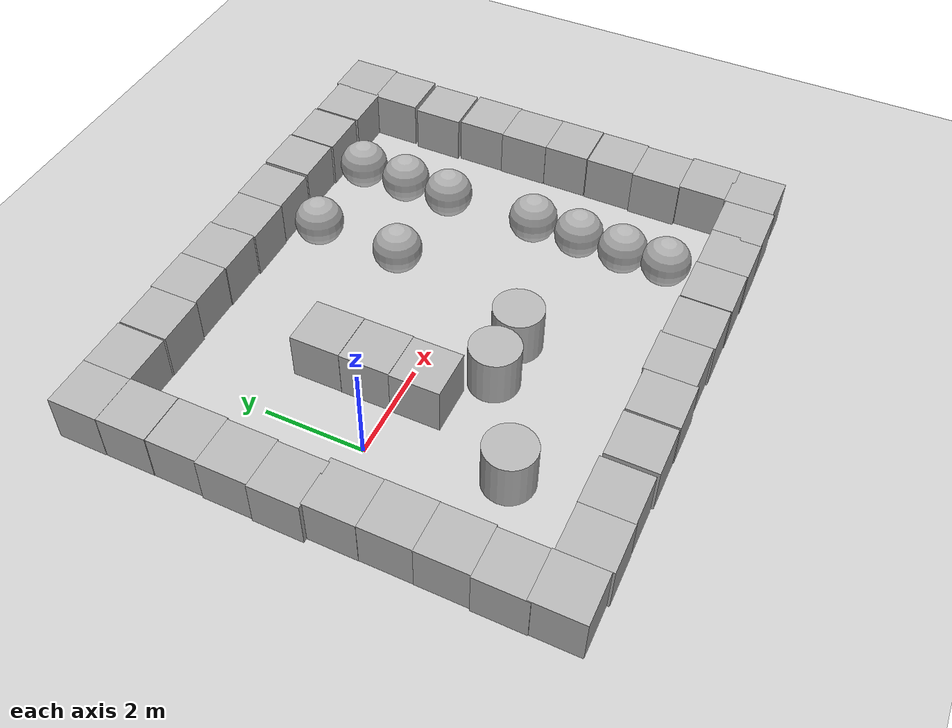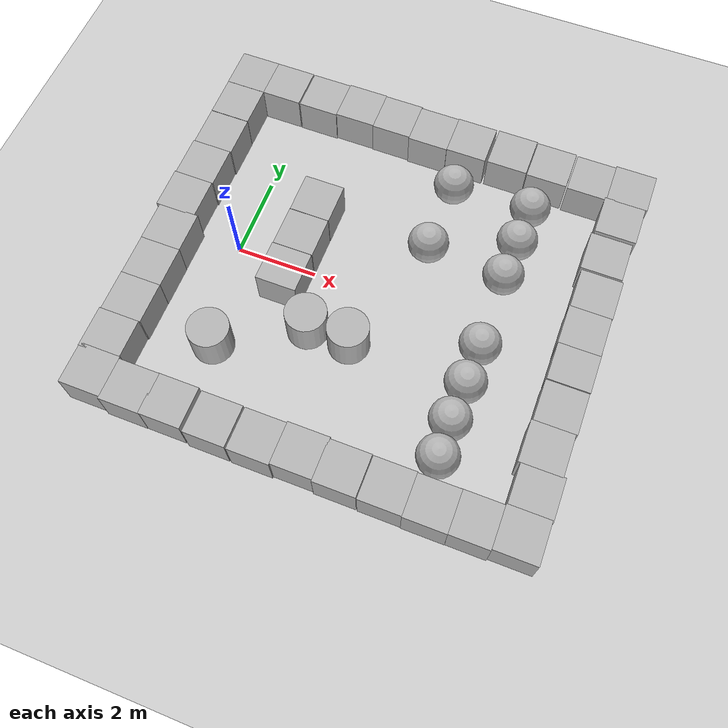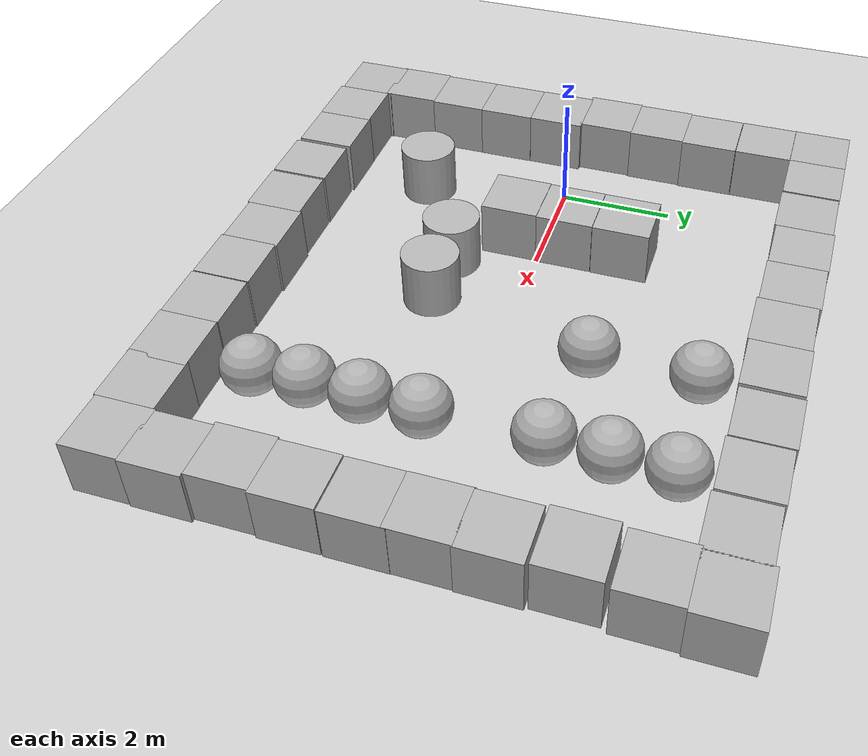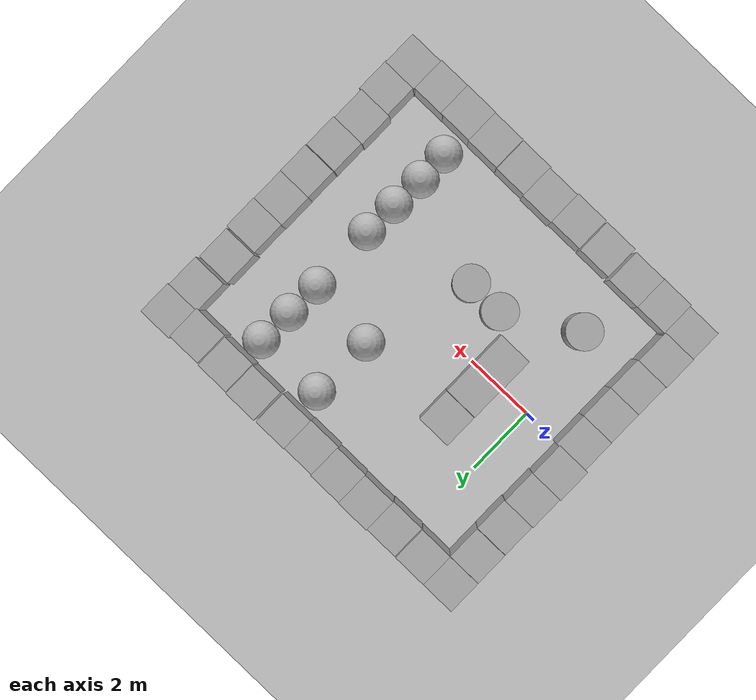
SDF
<sdf version="1.9">
 <world name="empty">
  <model name="ground_plane">
   <static>true</static>
   <link name="link">
    <collision name="collision">
     <geometry><plane><normal>0 0 1</normal><size>100 100</size></plane></geometry>
    </collision>
    <visual name="visual">
     <geometry><plane><normal>0 0 1</normal><size>100 100</size></plane></geometry>
     <material>
      <ambient>0.8 0.8 0.8 1</ambient>
      <diffuse>0.8 0.8 0.8 1</diffuse>
      <specular>0.8 0.8 0.8 1</specular>
     </material>
    </visual>
    <inertial>
     <mass>1</mass>
     <inertia><ixx>1</ixx><ixy>0</ixy><ixz>0</ixz><iyy>1</iyy><iyz>0</iyz><izz>1</izz></inertia>
    </inertial>
   </link>
  </model>
  <model name="cylinder">
   <pose>0.503255 -2.55236 0.499994 0 -0 7e-06</pose>
   <link name="cylinder_link">
    <inertial>
     <inertia>
      <ixx>0.14580000000000001</ixx>
      <ixy>0</ixy>
      <ixz>0</ixz>
      <iyy>0.14580000000000001</iyy>
      <iyz>0</iyz>
      <izz>0.125</izz>
     </inertia>
     <mass>1</mass>
    </inertial>
    <collision name="cylinder_collision">
     <geometry><cylinder><radius>0.5</radius><length>1</length></cylinder></geometry>
    </collision>
    <visual name="cylinder_visual">
     <geometry><cylinder><radius>0.5</radius><length>1</length></cylinder></geometry>
     <material>
      <ambient>0.3 0.3 0.3 1</ambient>
      <diffuse>0.7 0.7 0.7 1</diffuse>
      <specular>1 1 1 1</specular>
     </material>
    </visual>
   </link>
   <static>false</static>
  </model>
  <model name="box">
   <pose>1.50794 1.50418 0.5 0 -0 -0</pose>
   <link name="box_link">
    <inertial>
     <inertia><ixx>0.16666</ixx><ixy>0</ixy><ixz>0</ixz><iyy>0.16666</iyy><iyz>0</iyz><izz>0.16666</izz></inertia>
     <mass>1</mass>
    </inertial>
    <collision name="box_collision"><geometry><box><size>1 1 1</size></box></geometry></collision>
    <visual name="box_visual">
     <geometry><box><size>1 1 1</size></box></geometry>
     <material>
      <ambient>0.3 0.3 0.3 1</ambient>
      <diffuse>0.7 0.7 0.7 1</diffuse>
      <specular>1 1 1 1</specular>
     </material>
    </visual>
   </link>
   <static>false</static>
  </model>
  <model name="box_0">
   <pose>1.50186 0.497619 0.5 0 0 -0</pose>
   <link name="box_link">
    <inertial>
     <inertia><ixx>0.16666</ixx><ixy>0</ixy><ixz>0</ixz><iyy>0.16666</iyy><iyz>0</iyz><izz>0.16666</izz></inertia>
     <mass>1</mass>
    </inertial>
    <collision name="box_collision"><geometry><box><size>1 1 1</size></box></geometry></collision>
    <visual name="box_visual">
     <geometry><box><size>1 1 1</size></box></geometry>
     <material>
      <ambient>0.3 0.3 0.3 1</ambient>
      <diffuse>0.7 0.7 0.7 1</diffuse>
      <specular>1 1 1 1</specular>
     </material>
    </visual>
   </link>
   <static>false</static>
  </model>
  <model name="box_1">
   <pose>1.48683 -0.506951 0.5 0 0 -0</pose>
   <link name="box_link">
    <inertial>
     <inertia><ixx>0.16666</ixx><ixy>0</ixy><ixz>0</ixz><iyy>0.16666</iyy><iyz>0</iyz><izz>0.16666</izz></inertia>
     <mass>1</mass>
    </inertial>
    <collision name="box_collision"><geometry><box><size>1 1 1</size></box></geometry></collision>
    <visual name="box_visual">
     <geometry><box><size>1 1 1</size></box></geometry>
     <material>
      <ambient>0.3 0.3 0.3 1</ambient>
      <diffuse>0.7 0.7 0.7 1</diffuse>
      <specular>1 1 1 1</specular>
     </material>
    </visual>
   </link>
   <static>false</static>
  </model>
  <model name="box_2">
   <pose>2.50045 4.49929 0.5 0 0 -0</pose>
   <link name="box_link">
    <inertial>
     <inertia><ixx>0.16666</ixx><ixy>0</ixy><ixz>0</ixz><iyy>0.16666</iyy><iyz>0</iyz><izz>0.16666</izz></inertia>
     <mass>1</mass>
    </inertial>
    <collision name="box_collision"><geometry><box><size>1 1 1</size></box></geometry></collision>
    <visual name="box_visual">
     <geometry><box><size>1 1 1</size></box></geometry>
     <material>
      <ambient>0.3 0.3 0.3 1</ambient>
      <diffuse>0.7 0.7 0.7 1</diffuse>
      <specular>1 1 1 1</specular>
     </material>
    </visual>
   </link>
   <static>false</static>
  </model>
  <model name="box_3">
   <pose>1.50045 4.51511 0.5 -0 -0 -0</pose>
   <link name="box_link">
    <inertial>
     <inertia><ixx>0.16666</ixx><ixy>0</ixy><ixz>0</ixz><iyy>0.16666</iyy><iyz>0</iyz><izz>0.16666</izz></inertia>
     <mass>1</mass>
    </inertial>
    <collision name="box_collision"><geometry><box><size>1 1 1</size></box></geometry></collision>
    <visual name="box_visual">
     <geometry><box><size>1 1 1</size></box></geometry>
     <material>
      <ambient>0.3 0.3 0.3 1</ambient>
      <diffuse>0.7 0.7 0.7 1</diffuse>
      <specular>1 1 1 1</specular>
     </material>
    </visual>
   </link>
   <static>false</static>
  </model>
  <model name="box_4">
   <pose>0.500446 4.48911 0.5 -0 -0 -0</pose>
   <link name="box_link">
    <inertial>
     <inertia><ixx>0.16666</ixx><ixy>0</ixy><ixz>0</ixz><iyy>0.16666</iyy><iyz>0</iyz><izz>0.16666</izz></inertia>
     <mass>1</mass>
    </inertial>
    <collision name="box_collision"><geometry><box><size>1 1 1</size></box></geometry></collision>
    <visual name="box_visual">
     <geometry><box><size>1 1 1</size></box></geometry>
     <material>
      <ambient>0.3 0.3 0.3 1</ambient>
      <diffuse>0.7 0.7 0.7 1</diffuse>
      <specular>1 1 1 1</specular>
     </material>
    </visual>
   </link>
   <static>false</static>
  </model>
  <model name="box_5">
   <pose>-0.529808 4.49815 0.5 0 0 -0.002658</pose>
   <link name="box_link">
    <inertial>
     <inertia><ixx>0.16666</ixx><ixy>0</ixy><ixz>0</ixz><iyy>0.16666</iyy><iyz>0</iyz><izz>0.16666</izz></inertia>
     <mass>1</mass>
    </inertial>
    <collision name="box_collision"><geometry><box><size>1 1 1</size></box></geometry></collision>
    <visual name="box_visual">
     <geometry><box><size>1 1 1</size></box></geometry>
     <material>
      <ambient>0.3 0.3 0.3 1</ambient>
      <diffuse>0.7 0.7 0.7 1</diffuse>
      <specular>1 1 1 1</specular>
     </material>
    </visual>
   </link>
   <static>false</static>
  </model>
  <model name="box_6">
   <pose>-1.52381 4.50084 0.5 -0 -0 -2e-06</pose>
   <link name="box_link">
    <inertial>
     <inertia><ixx>0.16666</ixx><ixy>0</ixy><ixz>0</ixz><iyy>0.16666</iyy><iyz>0</iyz><izz>0.16666</izz></inertia>
     <mass>1</mass>
    </inertial>
    <collision name="box_collision"><geometry><box><size>1 1 1</size></box></geometry></collision>
    <visual name="box_visual">
     <geometry><box><size>1 1 1</size></box></geometry>
     <material>
      <ambient>0.3 0.3 0.3 1</ambient>
      <diffuse>0.7 0.7 0.7 1</diffuse>
      <specular>1 1 1 1</specular>
     </material>
    </visual>
   </link>
   <static>false</static>
  </model>
  <model name="box_7">
   <pose>-1.51848 3.49947 0.5 0 -0 -3.3e-05</pose>
   <link name="box_link">
    <inertial>
     <inertia><ixx>0.16666</ixx><ixy>0</ixy><ixz>0</ixz><iyy>0.16666</iyy><iyz>0</iyz><izz>0.16666</izz></inertia>
     <mass>1</mass>
    </inertial>
    <collision name="box_collision"><geometry><box><size>1 1 1</size></box></geometry></collision>
    <visual name="box_visual">
     <geometry><box><size>1 1 1</size></box></geometry>
     <material>
      <ambient>0.3 0.3 0.3 1</ambient>
      <diffuse>0.7 0.7 0.7 1</diffuse>
      <specular>1 1 1 1</specular>
     </material>
    </visual>
   </link>
   <static>false</static>
  </model>
  <model name="box_8">
   <pose>-1.51418 2.4903 0.5 -0 0 0</pose>
   <link name="box_link">
    <inertial>
     <inertia><ixx>0.16666</ixx><ixy>0</ixy><ixz>0</ixz><iyy>0.16666</iyy><iyz>0</iyz><izz>0.16666</izz></inertia>
     <mass>1</mass>
    </inertial>
    <collision name="box_collision"><geometry><box><size>1 1 1</size></box></geometry></collision>
    <visual name="box_visual">
     <geometry><box><size>1 1 1</size></box></geometry>
     <material>
      <ambient>0.3 0.3 0.3 1</ambient>
      <diffuse>0.7 0.7 0.7 1</diffuse>
      <specular>1 1 1 1</specular>
     </material>
    </visual>
   </link>
   <static>false</static>
  </model>
  <model name="box_9">
   <pose>-1.54005 1.4903 0.5 -0 0 0</pose>
   <link name="box_link">
    <inertial>
     <inertia><ixx>0.16666</ixx><ixy>0</ixy><ixz>0</ixz><iyy>0.16666</iyy><iyz>0</iyz><izz>0.16666</izz></inertia>
     <mass>1</mass>
    </inertial>
    <collision name="box_collision"><geometry><box><size>1 1 1</size></box></geometry></collision>
    <visual name="box_visual">
     <geometry><box><size>1 1 1</size></box></geometry>
     <material>
      <ambient>0.3 0.3 0.3 1</ambient>
      <diffuse>0.7 0.7 0.7 1</diffuse>
      <specular>1 1 1 1</specular>
     </material>
    </visual>
   </link>
   <static>false</static>
  </model>
  <model name="box_10">
   <pose>-1.56596 0.490305 0.5 -0 0 0</pose>
   <link name="box_link">
    <inertial>
     <inertia><ixx>0.16666</ixx><ixy>0</ixy><ixz>0</ixz><iyy>0.16666</iyy><iyz>0</iyz><izz>0.16666</izz></inertia>
     <mass>1</mass>
    </inertial>
    <collision name="box_collision"><geometry><box><size>1 1 1</size></box></geometry></collision>
    <visual name="box_visual">
     <geometry><box><size>1 1 1</size></box></geometry>
     <material>
      <ambient>0.3 0.3 0.3 1</ambient>
      <diffuse>0.7 0.7 0.7 1</diffuse>
      <specular>1 1 1 1</specular>
     </material>
    </visual>
   </link>
   <static>false</static>
  </model>
  <model name="box_11">
   <pose>-1.47935 -0.480746 0.5 -0 -0 1e-06</pose>
   <link name="box_link">
    <inertial>
     <inertia><ixx>0.16666</ixx><ixy>0</ixy><ixz>0</ixz><iyy>0.16666</iyy><iyz>0</iyz><izz>0.16666</izz></inertia>
     <mass>1</mass>
    </inertial>
    <collision name="box_collision"><geometry><box><size>1 1 1</size></box></geometry></collision>
    <visual name="box_visual">
     <geometry><box><size>1 1 1</size></box></geometry>
     <material>
      <ambient>0.3 0.3 0.3 1</ambient>
      <diffuse>0.7 0.7 0.7 1</diffuse>
      <specular>1 1 1 1</specular>
     </material>
    </visual>
   </link>
   <static>false</static>
  </model>
  <model name="box_12">
   <pose>-1.47385 -1.48074 0.5 0 -0 0</pose>
   <link name="box_link">
    <inertial>
     <inertia><ixx>0.16666</ixx><ixy>0</ixy><ixz>0</ixz><iyy>0.16666</iyy><iyz>0</iyz><izz>0.16666</izz></inertia>
     <mass>1</mass>
    </inertial>
    <collision name="box_collision"><geometry><box><size>1 1 1</size></box></geometry></collision>
    <visual name="box_visual">
     <geometry><box><size>1 1 1</size></box></geometry>
     <material>
      <ambient>0.3 0.3 0.3 1</ambient>
      <diffuse>0.7 0.7 0.7 1</diffuse>
      <specular>1 1 1 1</specular>
     </material>
    </visual>
   </link>
   <static>false</static>
  </model>
  <model name="box_13">
   <pose>-1.47812 -2.48075 0.5 0 0 0</pose>
   <link name="box_link">
    <inertial>
     <inertia><ixx>0.16666</ixx><ixy>0</ixy><ixz>0</ixz><iyy>0.16666</iyy><iyz>0</iyz><izz>0.16666</izz></inertia>
     <mass>1</mass>
    </inertial>
    <collision name="box_collision"><geometry><box><size>1 1 1</size></box></geometry></collision>
    <visual name="box_visual">
     <geometry><box><size>1 1 1</size></box></geometry>
     <material>
      <ambient>0.3 0.3 0.3 1</ambient>
      <diffuse>0.7 0.7 0.7 1</diffuse>
      <specular>1 1 1 1</specular>
     </material>
    </visual>
   </link>
   <static>false</static>
  </model>
  <model name="box_14">
   <pose>-1.50887 -3.48075 0.5 0 0 0</pose>
   <link name="box_link">
    <inertial>
     <inertia><ixx>0.16666</ixx><ixy>0</ixy><ixz>0</ixz><iyy>0.16666</iyy><iyz>0</iyz><izz>0.16666</izz></inertia>
     <mass>1</mass>
    </inertial>
    <collision name="box_collision"><geometry><box><size>1 1 1</size></box></geometry></collision>
    <visual name="box_visual">
     <geometry><box><size>1 1 1</size></box></geometry>
     <material>
      <ambient>0.3 0.3 0.3 1</ambient>
      <diffuse>0.7 0.7 0.7 1</diffuse>
      <specular>1 1 1 1</specular>
     </material>
    </visual>
   </link>
   <static>false</static>
  </model>
  <model name="box_15">
   <pose>-1.49467 -4.40209 0.5 0 -0 0</pose>
   <link name="box_link">
    <inertial>
     <inertia><ixx>0.16666</ixx><ixy>0</ixy><ixz>0</ixz><iyy>0.16666</iyy><iyz>0</iyz><izz>0.16666</izz></inertia>
     <mass>1</mass>
    </inertial>
    <collision name="box_collision"><geometry><box><size>1 1 1</size></box></geometry></collision>
    <visual name="box_visual">
     <geometry><box><size>1 1 1</size></box></geometry>
     <material>
      <ambient>0.3 0.3 0.3 1</ambient>
      <diffuse>0.7 0.7 0.7 1</diffuse>
      <specular>1 1 1 1</specular>
     </material>
    </visual>
   </link>
   <static>false</static>
  </model>
  <model name="box_16">
   <pose>0.469506 -4.44162 0.5 -0 0 0</pose>
   <link name="box_link">
    <inertial>
     <inertia><ixx>0.16666</ixx><ixy>0</ixy><ixz>0</ixz><iyy>0.16666</iyy><iyz>0</iyz><izz>0.16666</izz></inertia>
     <mass>1</mass>
    </inertial>
    <collision name="box_collision"><geometry><box><size>1 1 1</size></box></geometry></collision>
    <visual name="box_visual">
     <geometry><box><size>1 1 1</size></box></geometry>
     <material>
      <ambient>0.3 0.3 0.3 1</ambient>
      <diffuse>0.7 0.7 0.7 1</diffuse>
      <specular>1 1 1 1</specular>
     </material>
    </visual>
   </link>
   <static>false</static>
  </model>
  <model name="box_17">
   <pose>3.47628 4.46753 0.5 0 0 -0</pose>
   <link name="box_link">
    <inertial>
     <inertia><ixx>0.16666</ixx><ixy>0</ixy><ixz>0</ixz><iyy>0.16666</iyy><iyz>0</iyz><izz>0.16666</izz></inertia>
     <mass>1</mass>
    </inertial>
    <collision name="box_collision"><geometry><box><size>1 1 1</size></box></geometry></collision>
    <visual name="box_visual">
     <geometry><box><size>1 1 1</size></box></geometry>
     <material>
      <ambient>0.3 0.3 0.3 1</ambient>
      <diffuse>0.7 0.7 0.7 1</diffuse>
      <specular>1 1 1 1</specular>
     </material>
    </visual>
   </link>
   <static>false</static>
  </model>
  <model name="box_18">
   <pose>4.47628 4.48453 0.5 0 0 -0</pose>
   <link name="box_link">
    <inertial>
     <inertia><ixx>0.16666</ixx><ixy>0</ixy><ixz>0</ixz><iyy>0.16666</iyy><iyz>0</iyz><izz>0.16666</izz></inertia>
     <mass>1</mass>
    </inertial>
    <collision name="box_collision"><geometry><box><size>1 1 1</size></box></geometry></collision>
    <visual name="box_visual">
     <geometry><box><size>1 1 1</size></box></geometry>
     <material>
      <ambient>0.3 0.3 0.3 1</ambient>
      <diffuse>0.7 0.7 0.7 1</diffuse>
      <specular>1 1 1 1</specular>
     </material>
    </visual>
   </link>
   <static>false</static>
  </model>
  <model name="sphere">
   <pose>4.40752 3.38494 0.5 0 -0 0</pose>
   <link name="sphere_link">
    <inertial>
     <inertia>
      <ixx>0.10000000000000001</ixx>
      <ixy>0</ixy>
      <ixz>0</ixz>
      <iyy>0.10000000000000001</iyy>
      <iyz>0</iyz>
      <izz>0.10000000000000001</izz>
     </inertia>
     <mass>1</mass>
    </inertial>
    <collision name="sphere_collision"><geometry><sphere><radius>0.5</radius></sphere></geometry></collision>
    <visual name="sphere_visual">
     <geometry><sphere><radius>0.5</radius></sphere></geometry>
     <material>
      <ambient>0.3 0.3 0.3 1</ambient>
      <diffuse>0.7 0.7 0.7 1</diffuse>
      <specular>1 1 1 1</specular>
     </material>
    </visual>
   </link>
   <static>false</static>
  </model>
  <model name="box_19">
   <pose>5.53888 4.49679 0.5 0 0 -0</pose>
   <link name="box_link">
    <inertial>
     <inertia><ixx>0.16666</ixx><ixy>0</ixy><ixz>0</ixz><iyy>0.16666</iyy><iyz>0</iyz><izz>0.16666</izz></inertia>
     <mass>1</mass>
    </inertial>
    <collision name="box_collision"><geometry><box><size>1 1 1</size></box></geometry></collision>
    <visual name="box_visual">
     <geometry><box><size>1 1 1</size></box></geometry>
     <material>
      <ambient>0.3 0.3 0.3 1</ambient>
      <diffuse>0.7 0.7 0.7 1</diffuse>
      <specular>1 1 1 1</specular>
     </material>
    </visual>
   </link>
   <static>false</static>
  </model>
  <model name="box_20">
   <pose>6.55933 4.47069 0.5 0 0 -0</pose>
   <link name="box_link">
    <inertial>
     <inertia><ixx>0.16666</ixx><ixy>0</ixy><ixz>0</ixz><iyy>0.16666</iyy><iyz>0</iyz><izz>0.16666</izz></inertia>
     <mass>1</mass>
    </inertial>
    <collision name="box_collision"><geometry><box><size>1 1 1</size></box></geometry></collision>
    <visual name="box_visual">
     <geometry><box><size>1 1 1</size></box></geometry>
     <material>
      <ambient>0.3 0.3 0.3 1</ambient>
      <diffuse>0.7 0.7 0.7 1</diffuse>
      <specular>1 1 1 1</specular>
     </material>
    </visual>
   </link>
   <static>false</static>
  </model>
  <model name="box_21">
   <pose>7.5951 4.44393 0.5 -0 -0 2e-06</pose>
   <link name="box_link">
    <inertial>
     <inertia><ixx>0.16666</ixx><ixy>0</ixy><ixz>0</ixz><iyy>0.16666</iyy><iyz>0</iyz><izz>0.16666</izz></inertia>
     <mass>1</mass>
    </inertial>
    <collision name="box_collision"><geometry><box><size>1 1 1</size></box></geometry></collision>
    <visual name="box_visual">
     <geometry><box><size>1 1 1</size></box></geometry>
     <material>
      <ambient>0.3 0.3 0.3 1</ambient>
      <diffuse>0.7 0.7 0.7 1</diffuse>
      <specular>1 1 1 1</specular>
     </material>
    </visual>
   </link>
   <static>false</static>
  </model>
  <model name="sphere_0">
   <pose>4.36976 1.57506 0.5 0 -0 0</pose>
   <link name="sphere_link">
    <inertial>
     <inertia>
      <ixx>0.10000000000000001</ixx>
      <ixy>0</ixy>
      <ixz>0</ixz>
      <iyy>0.10000000000000001</iyy>
      <iyz>0</iyz>
      <izz>0.10000000000000001</izz>
     </inertia>
     <mass>1</mass>
    </inertial>
    <collision name="sphere_collision"><geometry><sphere><radius>0.5</radius></sphere></geometry></collision>
    <visual name="sphere_visual">
     <geometry><sphere><radius>0.5</radius></sphere></geometry>
     <material>
      <ambient>0.3 0.3 0.3 1</ambient>
      <diffuse>0.7 0.7 0.7 1</diffuse>
      <specular>1 1 1 1</specular>
     </material>
    </visual>
   </link>
   <static>false</static>
  </model>
  <model name="cylinder_0">
   <pose>2.42612 -1.41745 0.499999 -0 0 -0</pose>
   <link name="cylinder_link">
    <inertial>
     <inertia>
      <ixx>0.14580000000000001</ixx>
      <ixy>0</ixy>
      <ixz>0</ixz>
      <iyy>0.14580000000000001</iyy>
      <iyz>0</iyz>
      <izz>0.125</izz>
     </inertia>
     <mass>1</mass>
    </inertial>
    <collision name="cylinder_collision">
     <geometry><cylinder><radius>0.5</radius><length>1</length></cylinder></geometry>
    </collision>
    <visual name="cylinder_visual">
     <geometry><cylinder><radius>0.5</radius><length>1</length></cylinder></geometry>
     <material>
      <ambient>0.3 0.3 0.3 1</ambient>
      <diffuse>0.7 0.7 0.7 1</diffuse>
      <specular>1 1 1 1</specular>
     </material>
    </visual>
   </link>
   <static>false</static>
  </model>
  <model name="sphere_1">
   <pose>6.36228 2.40525 0.5 0 -0 0</pose>
   <link name="sphere_link">
    <inertial>
     <inertia>
      <ixx>0.10000000000000001</ixx>
      <ixy>0</ixy>
      <ixz>0</ixz>
      <iyy>0.10000000000000001</iyy>
      <iyz>0</iyz>
      <izz>0.10000000000000001</izz>
     </inertia>
     <mass>1</mass>
    </inertial>
    <collision name="sphere_collision"><geometry><sphere><radius>0.5</radius></sphere></geometry></collision>
    <visual name="sphere_visual">
     <geometry><sphere><radius>0.5</radius></sphere></geometry>
     <material>
      <ambient>0.3 0.3 0.3 1</ambient>
      <diffuse>0.7 0.7 0.7 1</diffuse>
      <specular>1 1 1 1</specular>
     </material>
    </visual>
   </link>
   <static>false</static>
  </model>
  <model name="sphere_2">
   <pose>6.38705 3.42251 0.5 0.02466 -0 0</pose>
   <link name="sphere_link">
    <inertial>
     <inertia>
      <ixx>0.10000000000000001</ixx>
      <ixy>0</ixy>
      <ixz>0</ixz>
      <iyy>0.10000000000000001</iyy>
      <iyz>0</iyz>
      <izz>0.10000000000000001</izz>
     </inertia>
     <mass>1</mass>
    </inertial>
    <collision name="sphere_collision"><geometry><sphere><radius>0.5</radius></sphere></geometry></collision>
    <visual name="sphere_visual">
     <geometry><sphere><radius>0.5</radius></sphere></geometry>
     <material>
      <ambient>0.3 0.3 0.3 1</ambient>
      <diffuse>0.7 0.7 0.7 1</diffuse>
      <specular>1 1 1 1</specular>
     </material>
    </visual>
   </link>
   <static>false</static>
  </model>
  <model name="sphere_3">
   <pose>6.32671 1.3864 0.5 0 -0 0</pose>
   <link name="sphere_link">
    <inertial>
     <inertia>
      <ixx>0.10000000000000001</ixx>
      <ixy>0</ixy>
      <ixz>0</ixz>
      <iyy>0.10000000000000001</iyy>
      <iyz>0</iyz>
      <izz>0.10000000000000001</izz>
     </inertia>
     <mass>1</mass>
    </inertial>
    <collision name="sphere_collision"><geometry><sphere><radius>0.5</radius></sphere></geometry></collision>
    <visual name="sphere_visual">
     <geometry><sphere><radius>0.5</radius></sphere></geometry>
     <material>
      <ambient>0.3 0.3 0.3 1</ambient>
      <diffuse>0.7 0.7 0.7 1</diffuse>
      <specular>1 1 1 1</specular>
     </material>
    </visual>
   </link>
   <static>false</static>
  </model>
  <model name="cylinder_1">
   <pose>3.46715 -1.427 0.499999 -0 0 -0</pose>
   <link name="cylinder_link">
    <inertial>
     <inertia>
      <ixx>0.14580000000000001</ixx>
      <ixy>0</ixy>
      <ixz>0</ixz>
      <iyy>0.14580000000000001</iyy>
      <iyz>0</iyz>
      <izz>0.125</izz>
     </inertia>
     <mass>1</mass>
    </inertial>
    <collision name="cylinder_collision">
     <geometry><cylinder><radius>0.5</radius><length>1</length></cylinder></geometry>
    </collision>
    <visual name="cylinder_visual">
     <geometry><cylinder><radius>0.5</radius><length>1</length></cylinder></geometry>
     <material>
      <ambient>0.3 0.3 0.3 1</ambient>
      <diffuse>0.7 0.7 0.7 1</diffuse>
      <specular>1 1 1 1</specular>
     </material>
    </visual>
   </link>
   <static>false</static>
  </model>
  <model name="box_22">
   <pose>-0.494669 -4.44777 0.5 0 -0 -0</pose>
   <link name="box_link">
    <inertial>
     <inertia><ixx>0.16666</ixx><ixy>0</ixy><ixz>0</ixz><iyy>0.16666</iyy><iyz>0</iyz><izz>0.16666</izz></inertia>
     <mass>1</mass>
    </inertial>
    <collision name="box_collision"><geometry><box><size>1 1 1</size></box></geometry></collision>
    <visual name="box_visual">
     <geometry><box><size>1 1 1</size></box></geometry>
     <material>
      <ambient>0.3 0.3 0.3 1</ambient>
      <diffuse>0.7 0.7 0.7 1</diffuse>
      <specular>1 1 1 1</specular>
     </material>
    </visual>
   </link>
   <static>false</static>
  </model>
  <model name="box_23">
   <pose>1.54355 -4.47751 0.5 0 0 -0</pose>
   <link name="box_link">
    <inertial>
     <inertia><ixx>0.16666</ixx><ixy>0</ixy><ixz>0</ixz><iyy>0.16666</iyy><iyz>0</iyz><izz>0.16666</izz></inertia>
     <mass>1</mass>
    </inertial>
    <collision name="box_collision"><geometry><box><size>1 1 1</size></box></geometry></collision>
    <visual name="box_visual">
     <geometry><box><size>1 1 1</size></box></geometry>
     <material>
      <ambient>0.3 0.3 0.3 1</ambient>
      <diffuse>0.7 0.7 0.7 1</diffuse>
      <specular>1 1 1 1</specular>
     </material>
    </visual>
   </link>
   <static>false</static>
  </model>
  <model name="box_24">
   <pose>2.5828 -4.48788 0.5 0 -0 -0</pose>
   <link name="box_link">
    <inertial>
     <inertia><ixx>0.16666</ixx><ixy>0</ixy><ixz>0</ixz><iyy>0.16666</iyy><iyz>0</iyz><izz>0.16666</izz></inertia>
     <mass>1</mass>
    </inertial>
    <collision name="box_collision"><geometry><box><size>1 1 1</size></box></geometry></collision>
    <visual name="box_visual">
     <geometry><box><size>1 1 1</size></box></geometry>
     <material>
      <ambient>0.3 0.3 0.3 1</ambient>
      <diffuse>0.7 0.7 0.7 1</diffuse>
      <specular>1 1 1 1</specular>
     </material>
    </visual>
   </link>
   <static>false</static>
  </model>
  <model name="box_25">
   <pose>3.57533 -4.45548 0.5 -0 1e-06 0</pose>
   <link name="box_link">
    <inertial>
     <inertia><ixx>0.16666</ixx><ixy>0</ixy><ixz>0</ixz><iyy>0.16666</iyy><iyz>0</iyz><izz>0.16666</izz></inertia>
     <mass>1</mass>
    </inertial>
    <collision name="box_collision"><geometry><box><size>1 1 1</size></box></geometry></collision>
    <visual name="box_visual">
     <geometry><box><size>1 1 1</size></box></geometry>
     <material>
      <ambient>0.3 0.3 0.3 1</ambient>
      <diffuse>0.7 0.7 0.7 1</diffuse>
      <specular>1 1 1 1</specular>
     </material>
    </visual>
   </link>
   <static>false</static>
  </model>
  <model name="box_26">
   <pose>4.5464 -4.48762 0.5 0 0 -0</pose>
   <link name="box_link">
    <inertial>
     <inertia><ixx>0.16666</ixx><ixy>0</ixy><ixz>0</ixz><iyy>0.16666</iyy><iyz>0</iyz><izz>0.16666</izz></inertia>
     <mass>1</mass>
    </inertial>
    <collision name="box_collision"><geometry><box><size>1 1 1</size></box></geometry></collision>
    <visual name="box_visual">
     <geometry><box><size>1 1 1</size></box></geometry>
     <material>
      <ambient>0.3 0.3 0.3 1</ambient>
      <diffuse>0.7 0.7 0.7 1</diffuse>
      <specular>1 1 1 1</specular>
     </material>
    </visual>
   </link>
   <static>false</static>
  </model>
  <model name="box_27">
   <pose>5.56532 -4.50031 0.5 -0 -0 0</pose>
   <link name="box_link">
    <inertial>
     <inertia><ixx>0.16666</ixx><ixy>0</ixy><ixz>0</ixz><iyy>0.16666</iyy><iyz>0</iyz><izz>0.16666</izz></inertia>
     <mass>1</mass>
    </inertial>
    <collision name="box_collision"><geometry><box><size>1 1 1</size></box></geometry></collision>
    <visual name="box_visual">
     <geometry><box><size>1 1 1</size></box></geometry>
     <material>
      <ambient>0.3 0.3 0.3 1</ambient>
      <diffuse>0.7 0.7 0.7 1</diffuse>
      <specular>1 1 1 1</specular>
     </material>
    </visual>
   </link>
   <static>false</static>
  </model>
  <model name="box_28">
   <pose>6.56532 -4.51466 0.5 -0 -0 0</pose>
   <link name="box_link">
    <inertial>
     <inertia><ixx>0.16666</ixx><ixy>0</ixy><ixz>0</ixz><iyy>0.16666</iyy><iyz>0</iyz><izz>0.16666</izz></inertia>
     <mass>1</mass>
    </inertial>
    <collision name="box_collision"><geometry><box><size>1 1 1</size></box></geometry></collision>
    <visual name="box_visual">
     <geometry><box><size>1 1 1</size></box></geometry>
     <material>
      <ambient>0.3 0.3 0.3 1</ambient>
      <diffuse>0.7 0.7 0.7 1</diffuse>
      <specular>1 1 1 1</specular>
     </material>
    </visual>
   </link>
   <static>false</static>
  </model>
  <model name="box_29">
   <pose>7.49455 -4.50817 0.5 0 0 -0</pose>
   <link name="box_link">
    <inertial>
     <inertia><ixx>0.16666</ixx><ixy>0</ixy><ixz>0</ixz><iyy>0.16666</iyy><iyz>0</iyz><izz>0.16666</izz></inertia>
     <mass>1</mass>
    </inertial>
    <collision name="box_collision"><geometry><box><size>1 1 1</size></box></geometry></collision>
    <visual name="box_visual">
     <geometry><box><size>1 1 1</size></box></geometry>
     <material>
      <ambient>0.3 0.3 0.3 1</ambient>
      <diffuse>0.7 0.7 0.7 1</diffuse>
      <specular>1 1 1 1</specular>
     </material>
    </visual>
   </link>
   <static>false</static>
  </model>
  <model name="box_30">
   <pose>8.49455 -4.47491 0.5 0 0 -0</pose>
   <link name="box_link">
    <inertial>
     <inertia><ixx>0.16666</ixx><ixy>0</ixy><ixz>0</ixz><iyy>0.16666</iyy><iyz>0</iyz><izz>0.16666</izz></inertia>
     <mass>1</mass>
    </inertial>
    <collision name="box_collision"><geometry><box><size>1 1 1</size></box></geometry></collision>
    <visual name="box_visual">
     <geometry><box><size>1 1 1</size></box></geometry>
     <material>
      <ambient>0.3 0.3 0.3 1</ambient>
      <diffuse>0.7 0.7 0.7 1</diffuse>
      <specular>1 1 1 1</specular>
     </material>
    </visual>
   </link>
   <static>false</static>
  </model>
  <model name="box_31">
   <pose>8.57259 4.49411 0.5 -0 0 -2e-06</pose>
   <link name="box_link">
    <inertial>
     <inertia><ixx>0.16666</ixx><ixy>0</ixy><ixz>0</ixz><iyy>0.16666</iyy><iyz>0</iyz><izz>0.16666</izz></inertia>
     <mass>1</mass>
    </inertial>
    <collision name="box_collision"><geometry><box><size>1 1 1</size></box></geometry></collision>
    <visual name="box_visual">
     <geometry><box><size>1 1 1</size></box></geometry>
     <material>
      <ambient>0.3 0.3 0.3 1</ambient>
      <diffuse>0.7 0.7 0.7 1</diffuse>
      <specular>1 1 1 1</specular>
     </material>
    </visual>
   </link>
   <static>false</static>
  </model>
  <model name="box_32">
   <pose>8.53227 3.51307 0.5 0 0 -2.2e-05</pose>
   <link name="box_link">
    <inertial>
     <inertia><ixx>0.16666</ixx><ixy>0</ixy><ixz>0</ixz><iyy>0.16666</iyy><iyz>0</iyz><izz>0.16666</izz></inertia>
     <mass>1</mass>
    </inertial>
    <collision name="box_collision"><geometry><box><size>1 1 1</size></box></geometry></collision>
    <visual name="box_visual">
     <geometry><box><size>1 1 1</size></box></geometry>
     <material>
      <ambient>0.3 0.3 0.3 1</ambient>
      <diffuse>0.7 0.7 0.7 1</diffuse>
      <specular>1 1 1 1</specular>
     </material>
    </visual>
   </link>
   <static>false</static>
  </model>
  <model name="box_33">
   <pose>8.47173 2.43255 0.5 0 0 -0</pose>
   <link name="box_link">
    <inertial>
     <inertia><ixx>0.16666</ixx><ixy>0</ixy><ixz>0</ixz><iyy>0.16666</iyy><iyz>0</iyz><izz>0.16666</izz></inertia>
     <mass>1</mass>
    </inertial>
    <collision name="box_collision"><geometry><box><size>1 1 1</size></box></geometry></collision>
    <visual name="box_visual">
     <geometry><box><size>1 1 1</size></box></geometry>
     <material>
      <ambient>0.3 0.3 0.3 1</ambient>
      <diffuse>0.7 0.7 0.7 1</diffuse>
      <specular>1 1 1 1</specular>
     </material>
    </visual>
   </link>
   <static>false</static>
  </model>
  <model name="box_34">
   <pose>8.51129 1.38679 0.5 -0 0 -0</pose>
   <link name="box_link">
    <inertial>
     <inertia><ixx>0.16666</ixx><ixy>0</ixy><ixz>0</ixz><iyy>0.16666</iyy><iyz>0</iyz><izz>0.16666</izz></inertia>
     <mass>1</mass>
    </inertial>
    <collision name="box_collision"><geometry><box><size>1 1 1</size></box></geometry></collision>
    <visual name="box_visual">
     <geometry><box><size>1 1 1</size></box></geometry>
     <material>
      <ambient>0.3 0.3 0.3 1</ambient>
      <diffuse>0.7 0.7 0.7 1</diffuse>
      <specular>1 1 1 1</specular>
     </material>
    </visual>
   </link>
   <static>false</static>
  </model>
  <model name="box_35">
   <pose>8.49616 0.406609 0.5 0 0 0</pose>
   <link name="box_link">
    <inertial>
     <inertia><ixx>0.16666</ixx><ixy>0</ixy><ixz>0</ixz><iyy>0.16666</iyy><iyz>0</iyz><izz>0.16666</izz></inertia>
     <mass>1</mass>
    </inertial>
    <collision name="box_collision"><geometry><box><size>1 1 1</size></box></geometry></collision>
    <visual name="box_visual">
     <geometry><box><size>1 1 1</size></box></geometry>
     <material>
      <ambient>0.3 0.3 0.3 1</ambient>
      <diffuse>0.7 0.7 0.7 1</diffuse>
      <specular>1 1 1 1</specular>
     </material>
    </visual>
   </link>
   <static>false</static>
  </model>
  <model name="box_36">
   <pose>8.50214 -0.520992 0.5 0 0 -0</pose>
   <link name="box_link">
    <inertial>
     <inertia><ixx>0.16666</ixx><ixy>0</ixy><ixz>0</ixz><iyy>0.16666</iyy><iyz>0</iyz><izz>0.16666</izz></inertia>
     <mass>1</mass>
    </inertial>
    <collision name="box_collision"><geometry><box><size>1 1 1</size></box></geometry></collision>
    <visual name="box_visual">
     <geometry><box><size>1 1 1</size></box></geometry>
     <material>
      <ambient>0.3 0.3 0.3 1</ambient>
      <diffuse>0.7 0.7 0.7 1</diffuse>
      <specular>1 1 1 1</specular>
     </material>
    </visual>
   </link>
   <static>false</static>
  </model>
  <model name="box_37">
   <pose>8.48968 -1.54162 0.5 -0 -0 1e-06</pose>
   <link name="box_link">
    <inertial>
     <inertia><ixx>0.16666</ixx><ixy>0</ixy><ixz>0</ixz><iyy>0.16666</iyy><iyz>0</iyz><izz>0.16666</izz></inertia>
     <mass>1</mass>
    </inertial>
    <collision name="box_collision"><geometry><box><size>1 1 1</size></box></geometry></collision>
    <visual name="box_visual">
     <geometry><box><size>1 1 1</size></box></geometry>
     <material>
      <ambient>0.3 0.3 0.3 1</ambient>
      <diffuse>0.7 0.7 0.7 1</diffuse>
      <specular>1 1 1 1</specular>
     </material>
    </visual>
   </link>
   <static>false</static>
  </model>
  <model name="box_38">
   <pose>8.45434 -2.54162 0.5 -0 0 1e-06</pose>
   <link name="box_link">
    <inertial>
     <inertia><ixx>0.16666</ixx><ixy>0</ixy><ixz>0</ixz><iyy>0.16666</iyy><iyz>0</iyz><izz>0.16666</izz></inertia>
     <mass>1</mass>
    </inertial>
    <collision name="box_collision"><geometry><box><size>1 1 1</size></box></geometry></collision>
    <visual name="box_visual">
     <geometry><box><size>1 1 1</size></box></geometry>
     <material>
      <ambient>0.3 0.3 0.3 1</ambient>
      <diffuse>0.7 0.7 0.7 1</diffuse>
      <specular>1 1 1 1</specular>
     </material>
    </visual>
   </link>
   <static>false</static>
  </model>
  <model name="box_39">
   <pose>8.51466 -3.5227 0.5 -0 0 0</pose>
   <link name="box_link">
    <inertial>
     <inertia><ixx>0.16666</ixx><ixy>0</ixy><ixz>0</ixz><iyy>0.16666</iyy><iyz>0</iyz><izz>0.16666</izz></inertia>
     <mass>1</mass>
    </inertial>
    <collision name="box_collision"><geometry><box><size>1 1 1</size></box></geometry></collision>
    <visual name="box_visual">
     <geometry><box><size>1 1 1</size></box></geometry>
     <material>
      <ambient>0.3 0.3 0.3 1</ambient>
      <diffuse>0.7 0.7 0.7 1</diffuse>
      <specular>1 1 1 1</specular>
     </material>
    </visual>
   </link>
   <static>false</static>
  </model>
  <model name="sphere_4">
   <pose>6.34624 -1.52322 0.5 -0.002791 0.000134 -0.000434</pose>
   <link name="sphere_link">
    <inertial>
     <inertia>
      <ixx>0.10000000000000001</ixx>
      <ixy>0</ixy>
      <ixz>0</ixz>
      <iyy>0.10000000000000001</iyy>
      <iyz>0</iyz>
      <izz>0.10000000000000001</izz>
     </inertia>
     <mass>1</mass>
    </inertial>
    <collision name="sphere_collision"><geometry><sphere><radius>0.5</radius></sphere></geometry></collision>
    <visual name="sphere_visual">
     <geometry><sphere><radius>0.5</radius></sphere></geometry>
     <material>
      <ambient>0.3 0.3 0.3 1</ambient>
      <diffuse>0.7 0.7 0.7 1</diffuse>
      <specular>1 1 1 1</specular>
     </material>
    </visual>
   </link>
   <static>false</static>
  </model>
  <model name="sphere_5">
   <pose>6.3045 -2.47502 0.5 0.001846 -0.000617 -0.000145</pose>
   <link name="sphere_link">
    <inertial>
     <inertia>
      <ixx>0.10000000000000001</ixx>
      <ixy>0</ixy>
      <ixz>0</ixz>
      <iyy>0.10000000000000001</iyy>
      <iyz>0</iyz>
      <izz>0.10000000000000001</izz>
     </inertia>
     <mass>1</mass>
    </inertial>
    <collision name="sphere_collision"><geometry><sphere><radius>0.5</radius></sphere></geometry></collision>
    <visual name="sphere_visual">
     <geometry><sphere><radius>0.5</radius></sphere></geometry>
     <material>
      <ambient>0.3 0.3 0.3 1</ambient>
      <diffuse>0.7 0.7 0.7 1</diffuse>
      <specular>1 1 1 1</specular>
     </material>
    </visual>
   </link>
   <static>false</static>
  </model>
  <model name="sphere_6">
   <pose>6.32623 -3.37135 0.5 0.006194 -6e-05 0.000646</pose>
   <link name="sphere_link">
    <inertial>
     <inertia>
      <ixx>0.10000000000000001</ixx>
      <ixy>0</ixy>
      <ixz>0</ixz>
      <iyy>0.10000000000000001</iyy>
      <iyz>0</iyz>
      <izz>0.10000000000000001</izz>
     </inertia>
     <mass>1</mass>
    </inertial>
    <collision name="sphere_collision"><geometry><sphere><radius>0.5</radius></sphere></geometry></collision>
    <visual name="sphere_visual">
     <geometry><sphere><radius>0.5</radius></sphere></geometry>
     <material>
      <ambient>0.3 0.3 0.3 1</ambient>
      <diffuse>0.7 0.7 0.7 1</diffuse>
      <specular>1 1 1 1</specular>
     </material>
    </visual>
   </link>
   <static>false</static>
  </model>
  <model name="sphere_7">
   <pose>6.36569 -0.522036 0.5 -0.005693 0.000214 0.000356</pose>
   <link name="sphere_link">
    <inertial>
     <inertia>
      <ixx>0.10000000000000001</ixx>
      <ixy>0</ixy>
      <ixz>0</ixz>
      <iyy>0.10000000000000001</iyy>
      <iyz>0</iyz>
      <izz>0.10000000000000001</izz>
     </inertia>
     <mass>1</mass>
    </inertial>
    <collision name="sphere_collision"><geometry><sphere><radius>0.5</radius></sphere></geometry></collision>
    <visual name="sphere_visual">
     <geometry><sphere><radius>0.5</radius></sphere></geometry>
     <material>
      <ambient>0.3 0.3 0.3 1</ambient>
      <diffuse>0.7 0.7 0.7 1</diffuse>
      <specular>1 1 1 1</specular>
     </material>
    </visual>
   </link>
   <static>false</static>
  </model>
 </world>
</sdf>
